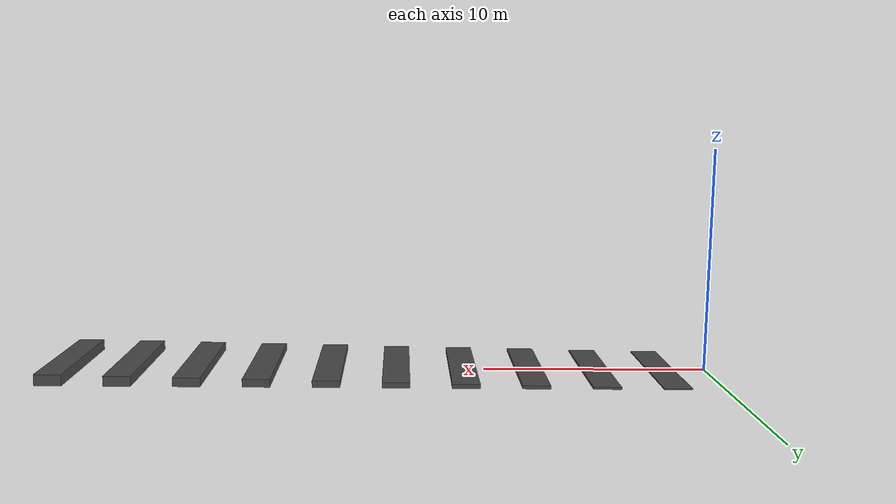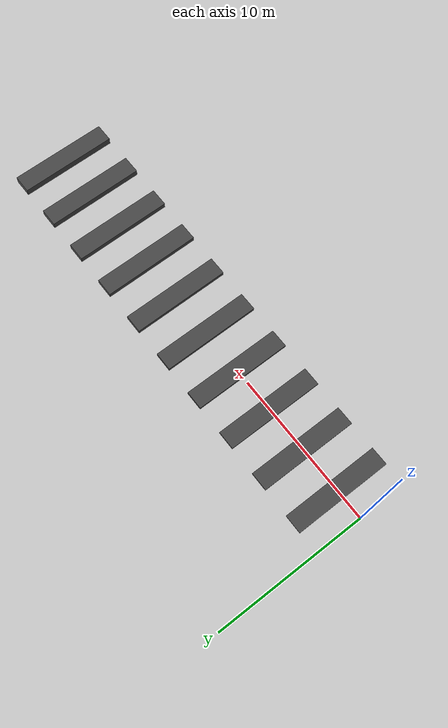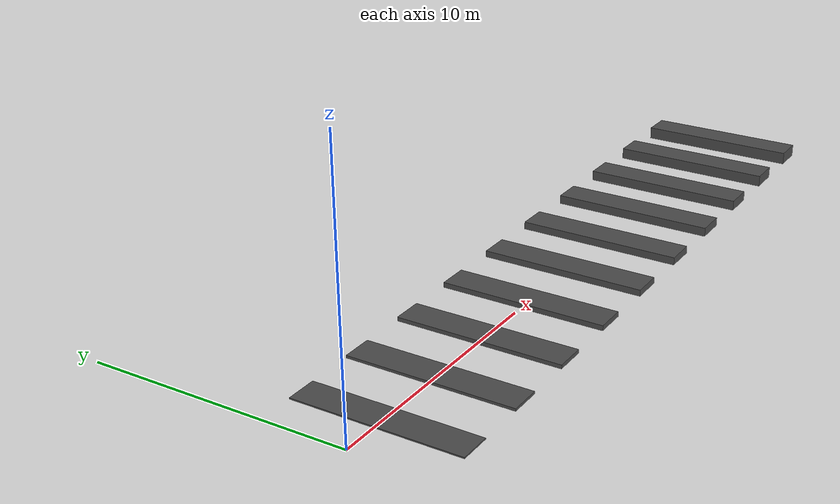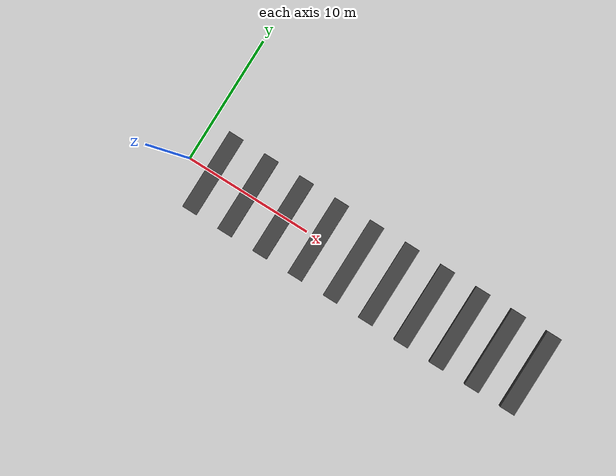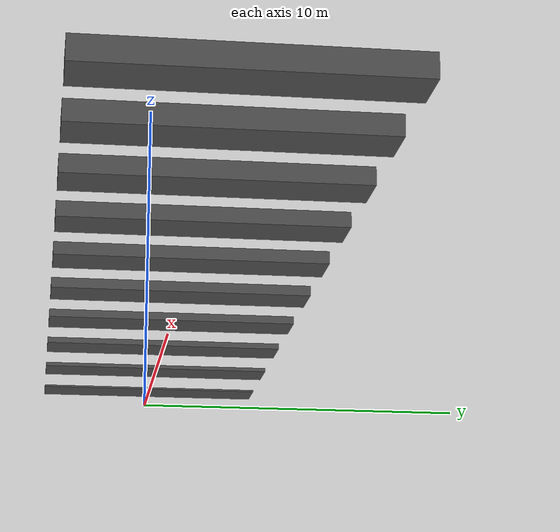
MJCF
<mujoco>
    <worldbody>
        <light diffuse="0.75 0.75 0.75" pos="2 0 5" dir="0 0 -1"/>
        <body pos="2 0 0.025">
            <geom type="box" size=".6 3.2 0.025" rgba="0.3 0.3 0.3 1"/>
        </body>
    </worldbody>

    <worldbody>
        <light diffuse="0.75 0.75 0.75" pos="5 0 5" dir="0 0 -1"/>
        <body pos="5 0 0.05">
            <geom type="box" size=".6 3.2 0.05" rgba="0.3 0.3 0.3 1"/>
        </body>
    </worldbody>

    <worldbody>
        <light diffuse="0.7 0.7 0.7" pos="8 0 5" dir="0 0 -1"/>
        <body pos="8 0 0.075">
            <geom type="box" size=".6 3.2 0.075" rgba="0.3 0.3 0.3 1"/>
        </body>
    </worldbody>

    <worldbody>
        <light diffuse="0.7 0.7 0.7" pos="11 0 5" dir="0 0 -1"/>
        <body pos="11 0 0.1">
            <geom type="box" size=".6 3.2 0.1" rgba="0.3 0.3 0.3 1"/>
        </body>
    </worldbody>

    <worldbody>
        <light diffuse="1 1 1" pos="14 0 5" dir="0 0 -1"/>
        <body pos="14 0 0.125">
            <geom type="box" size=".6 3.2 0.125" rgba="0.3 0.3 0.3 1"/>
        </body>
    </worldbody>

    <worldbody>
        <light diffuse="1 1 1" pos="17 0 5" dir="0 0 -1"/>
        <body pos="17 0 0.15">
            <geom type="box" size=".6 3.2 0.15" rgba="0.3 0.3 0.3 1"/>
        </body>
    </worldbody>

    <worldbody>
        <light diffuse="1 1 1" pos="20 0 5" dir="0 0 -1"/>
        <body pos="20 0 0.175">
            <geom type="box" size=".6 3.2 0.175" rgba="0.3 0.3 0.3 1"/>
        </body>
    </worldbody>

    <worldbody>
        <light diffuse="1 1 1" pos="23 0 5" dir="0 0 -1"/>
        <body pos="23 0 0.2">
            <geom type="box" size=".6 3.2 0.2" rgba="0.3 0.3 0.3 1"/>
        </body>
    </worldbody>

    <worldbody>
        <light diffuse="1 1 1" pos="26 0 5" dir="0 0 -1"/>
        <body pos="26 0 0.225">
            <geom type="box" size=".6 3.2 0.225" rgba="0.3 0.3 0.3 1"/>
        </body>
    </worldbody>

    <worldbody>
        <light diffuse="1 1 1" pos="29 0 5" dir="0 0 -1"/>
        <body pos="29 0 0.25">
            <geom type="box" size=".6 3.2 0.25" rgba="0.3 0.3 0.3 1"/>
        </body>
    </worldbody>
</mujoco>
